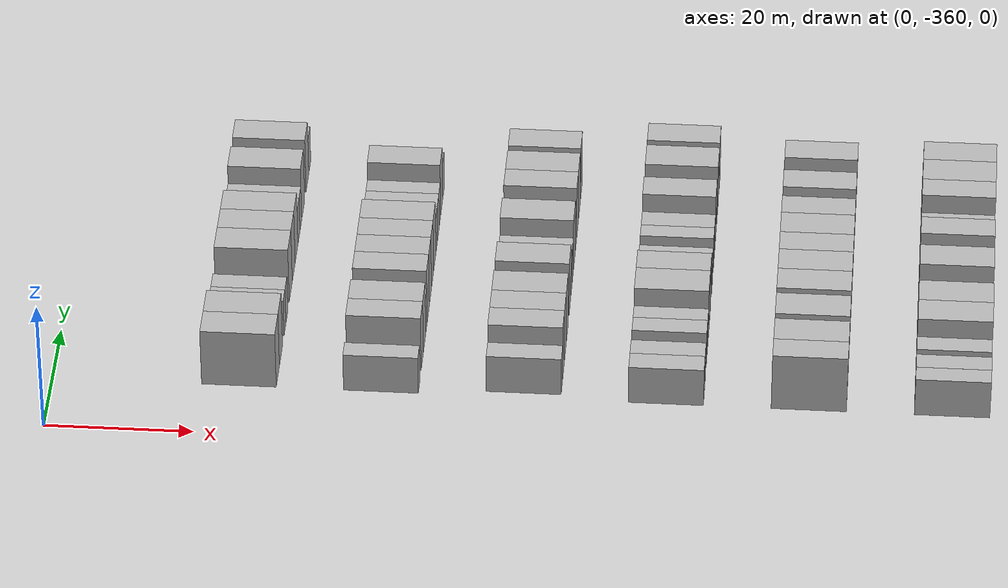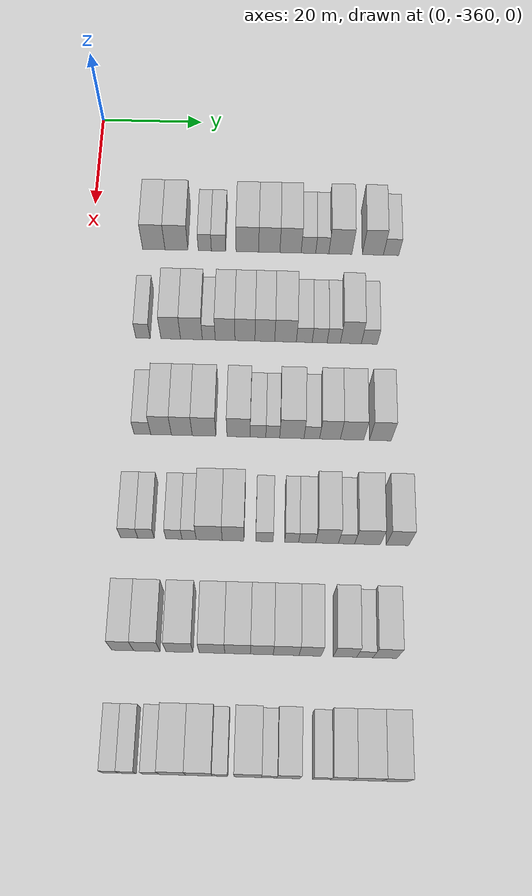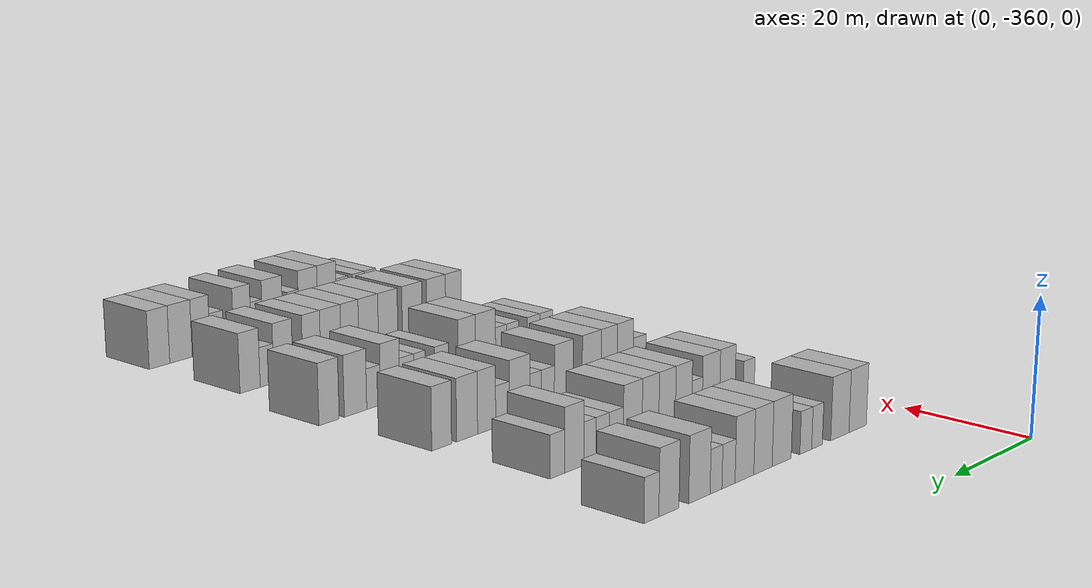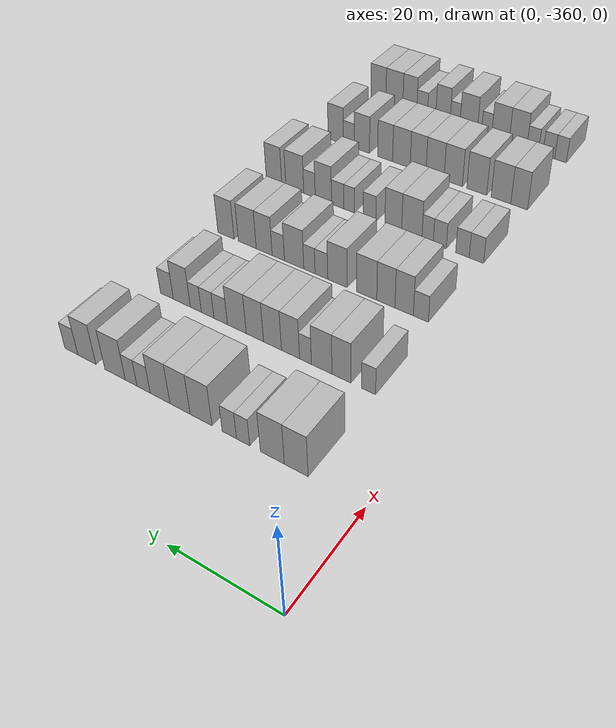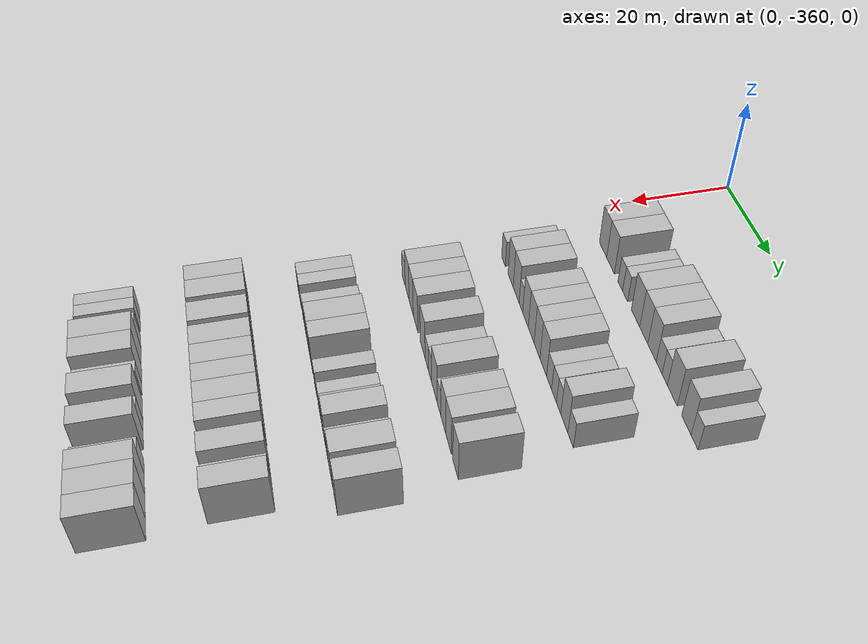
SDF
<sdf version="1.6">
 <world name="default">
  <model name="building_1">
   <static>1</static>
   <pose>25.0000 -347.8435 0 0.000000 0.000000 0.000000</pose>
   <link name="link">
    <pose>0 0 4.50 0 0 0</pose>
    <collision name="collision"><geometry><box><size>10.0000 4.3130 9.0000</size></box></geometry></collision>
    <visual name="visual">
     <cast_shadows>0</cast_shadows>
     <geometry><box><size>10.0000 4.3130 9.0000</size></box></geometry>
     <material>
      <script>
       <uri>model://HANNAS_wall/materials/scripts</uri>
       <uri>model://HANNAS_wall/materials/textures</uri>
       <name>vrc/HANNAS_wall</name>
      </script>
     </material>
    </visual>
   </link>
  </model>
  <model name="building_2">
   <static>1</static>
   <pose>25.0000 -343.4696 0 0.000000 0.000000 0.000000</pose>
   <link name="link">
    <pose>0 0 4.50 0 0 0</pose>
    <collision name="collision"><geometry><box><size>10.0000 4.4347 9.0000</size></box></geometry></collision>
    <visual name="visual">
     <cast_shadows>0</cast_shadows>
     <geometry><box><size>10.0000 4.4347 9.0000</size></box></geometry>
     <material>
      <script>
       <uri>model://HANNAS_wall/materials/scripts</uri>
       <uri>model://HANNAS_wall/materials/textures</uri>
       <name>vrc/HANNAS_wall</name>
      </script>
     </material>
    </visual>
   </link>
  </model>
  <model name="building_3">
   <static>1</static>
   <pose>25.0000 -337.9849 0 0.000000 0.000000 0.000000</pose>
   <link name="link">
    <pose>0 0 3.00 0 0 0</pose>
    <collision name="collision"><geometry><box><size>10.0000 2.5348 6.0000</size></box></geometry></collision>
    <visual name="visual">
     <cast_shadows>0</cast_shadows>
     <geometry><box><size>10.0000 2.5348 6.0000</size></box></geometry>
     <material>
      <script>
       <uri>model://HANNAS_wall/materials/scripts</uri>
       <uri>model://HANNAS_wall/materials/textures</uri>
       <name>vrc/HANNAS_wall</name>
      </script>
     </material>
    </visual>
   </link>
  </model>
  <model name="building_4">
   <static>1</static>
   <pose>25.0000 -335.3379 0 0.000000 0.000000 0.000000</pose>
   <link name="link">
    <pose>0 0 3.00 0 0 0</pose>
    <collision name="collision"><geometry><box><size>10.0000 2.7592 6.0000</size></box></geometry></collision>
    <visual name="visual">
     <cast_shadows>0</cast_shadows>
     <geometry><box><size>10.0000 2.7592 6.0000</size></box></geometry>
     <material>
      <script>
       <uri>model://HANNAS_wall/materials/scripts</uri>
       <uri>model://HANNAS_wall/materials/textures</uri>
       <name>vrc/HANNAS_wall</name>
      </script>
     </material>
    </visual>
   </link>
  </model>
  <model name="building_5">
   <static>1</static>
   <pose>25.0000 -329.7771 0 0.000000 0.000000 0.000000</pose>
   <link name="link">
    <pose>0 0 4.50 0 0 0</pose>
    <collision name="collision"><geometry><box><size>10.0000 4.3623 9.0000</size></box></geometry></collision>
    <visual name="visual">
     <cast_shadows>0</cast_shadows>
     <geometry><box><size>10.0000 4.3623 9.0000</size></box></geometry>
     <material>
      <script>
       <uri>model://HANNAS_wall/materials/scripts</uri>
       <uri>model://HANNAS_wall/materials/textures</uri>
       <name>vrc/HANNAS_wall</name>
      </script>
     </material>
    </visual>
   </link>
  </model>
  <model name="building_6">
   <static>1</static>
   <pose>25.0000 -325.5495 0 0.000000 0.000000 0.000000</pose>
   <link name="link">
    <pose>0 0 4.50 0 0 0</pose>
    <collision name="collision"><geometry><box><size>10.0000 4.0929 9.0000</size></box></geometry></collision>
    <visual name="visual">
     <cast_shadows>0</cast_shadows>
     <geometry><box><size>10.0000 4.0929 9.0000</size></box></geometry>
     <material>
      <script>
       <uri>model://HANNAS_wall/materials/scripts</uri>
       <uri>model://HANNAS_wall/materials/textures</uri>
       <name>vrc/HANNAS_wall</name>
      </script>
     </material>
    </visual>
   </link>
  </model>
  <model name="building_7">
   <static>1</static>
   <pose>25.0000 -321.4520 0 0.000000 0.000000 0.000000</pose>
   <link name="link">
    <pose>0 0 4.50 0 0 0</pose>
    <collision name="collision"><geometry><box><size>10.0000 4.1020 9.0000</size></box></geometry></collision>
    <visual name="visual">
     <cast_shadows>0</cast_shadows>
     <geometry><box><size>10.0000 4.1020 9.0000</size></box></geometry>
     <material>
      <script>
       <uri>model://HANNAS_wall/materials/scripts</uri>
       <uri>model://HANNAS_wall/materials/textures</uri>
       <name>vrc/HANNAS_wall</name>
      </script>
     </material>
    </visual>
   </link>
  </model>
  <model name="building_8">
   <static>1</static>
   <pose>25.0000 -317.9969 0 0.000000 0.000000 0.000000</pose>
   <link name="link">
    <pose>0 0 3.00 0 0 0</pose>
    <collision name="collision"><geometry><box><size>10.0000 2.8083 6.0000</size></box></geometry></collision>
    <visual name="visual">
     <cast_shadows>0</cast_shadows>
     <geometry><box><size>10.0000 2.8083 6.0000</size></box></geometry>
     <material>
      <script>
       <uri>model://HANNAS_wall/materials/scripts</uri>
       <uri>model://HANNAS_wall/materials/textures</uri>
       <name>vrc/HANNAS_wall</name>
      </script>
     </material>
    </visual>
   </link>
  </model>
  <model name="building_9">
   <static>1</static>
   <pose>25.0000 -315.3332 0 0.000000 0.000000 0.000000</pose>
   <link name="link">
    <pose>0 0 3.00 0 0 0</pose>
    <collision name="collision"><geometry><box><size>10.0000 2.5191 6.0000</size></box></geometry></collision>
    <visual name="visual">
     <cast_shadows>0</cast_shadows>
     <geometry><box><size>10.0000 2.5191 6.0000</size></box></geometry>
     <material>
      <script>
       <uri>model://HANNAS_wall/materials/scripts</uri>
       <uri>model://HANNAS_wall/materials/textures</uri>
       <name>vrc/HANNAS_wall</name>
      </script>
     </material>
    </visual>
   </link>
  </model>
  <model name="building_10">
   <static>1</static>
   <pose>25.0000 -311.8450 0 0.000000 0.000000 0.000000</pose>
   <link name="link">
    <pose>0 0 4.50 0 0 0</pose>
    <collision name="collision"><geometry><box><size>10.0000 4.4574 9.0000</size></box></geometry></collision>
    <visual name="visual">
     <cast_shadows>0</cast_shadows>
     <geometry><box><size>10.0000 4.4574 9.0000</size></box></geometry>
     <material>
      <script>
       <uri>model://HANNAS_wall/materials/scripts</uri>
       <uri>model://HANNAS_wall/materials/textures</uri>
       <name>vrc/HANNAS_wall</name>
      </script>
     </material>
    </visual>
   </link>
  </model>
  <model name="building_11">
   <static>1</static>
   <pose>25.0000 -305.5837 0 0.000000 0.000000 0.000000</pose>
   <link name="link">
    <pose>0 0 4.50 0 0 0</pose>
    <collision name="collision"><geometry><box><size>10.0000 4.0651 9.0000</size></box></geometry></collision>
    <visual name="visual">
     <cast_shadows>0</cast_shadows>
     <geometry><box><size>10.0000 4.0651 9.0000</size></box></geometry>
     <material>
      <script>
       <uri>model://HANNAS_wall/materials/scripts</uri>
       <uri>model://HANNAS_wall/materials/textures</uri>
       <name>vrc/HANNAS_wall</name>
      </script>
     </material>
    </visual>
   </link>
  </model>
  <model name="building_12">
   <static>1</static>
   <pose>25.0000 -302.0708 0 0.000000 0.000000 0.000000</pose>
   <link name="link">
    <pose>0 0 3.00 0 0 0</pose>
    <collision name="collision"><geometry><box><size>10.0000 2.9608 6.0000</size></box></geometry></collision>
    <visual name="visual">
     <cast_shadows>0</cast_shadows>
     <geometry><box><size>10.0000 2.9608 6.0000</size></box></geometry>
     <material>
      <script>
       <uri>model://HANNAS_wall/materials/scripts</uri>
       <uri>model://HANNAS_wall/materials/textures</uri>
       <name>vrc/HANNAS_wall</name>
      </script>
     </material>
    </visual>
   </link>
  </model>
  <model name="building_168">
   <static>1</static>
   <pose>44.0000 -348.6609 0 0.000000 0.000000 0.000000</pose>
   <link name="link">
    <pose>0 0 3.00 0 0 0</pose>
    <collision name="collision"><geometry><box><size>10.0000 2.6781 6.0000</size></box></geometry></collision>
    <visual name="visual">
     <cast_shadows>0</cast_shadows>
     <geometry><box><size>10.0000 2.6781 6.0000</size></box></geometry>
     <material>
      <script>
       <uri>model://HANNAS_wall/materials/scripts</uri>
       <uri>model://HANNAS_wall/materials/textures</uri>
       <name>vrc/HANNAS_wall</name>
      </script>
     </material>
    </visual>
   </link>
  </model>
  <model name="building_169">
   <static>1</static>
   <pose>44.0000 -343.4967 0 0.000000 0.000000 0.000000</pose>
   <link name="link">
    <pose>0 0 4.50 0 0 0</pose>
    <collision name="collision"><geometry><box><size>10.0000 3.6504 9.0000</size></box></geometry></collision>
    <visual name="visual">
     <cast_shadows>0</cast_shadows>
     <geometry><box><size>10.0000 3.6504 9.0000</size></box></geometry>
     <material>
      <script>
       <uri>model://HANNAS_wall/materials/scripts</uri>
       <uri>model://HANNAS_wall/materials/textures</uri>
       <name>vrc/HANNAS_wall</name>
      </script>
     </material>
    </visual>
   </link>
  </model>
  <model name="building_170">
   <static>1</static>
   <pose>44.0000 -339.6481 0 0.000000 0.000000 0.000000</pose>
   <link name="link">
    <pose>0 0 4.50 0 0 0</pose>
    <collision name="collision"><geometry><box><size>10.0000 4.0467 9.0000</size></box></geometry></collision>
    <visual name="visual">
     <cast_shadows>0</cast_shadows>
     <geometry><box><size>10.0000 4.0467 9.0000</size></box></geometry>
     <material>
      <script>
       <uri>model://HANNAS_wall/materials/scripts</uri>
       <uri>model://HANNAS_wall/materials/textures</uri>
       <name>vrc/HANNAS_wall</name>
      </script>
     </material>
    </visual>
   </link>
  </model>
  <model name="building_171">
   <static>1</static>
   <pose>44.0000 -336.4224 0 0.000000 0.000000 0.000000</pose>
   <link name="link">
    <pose>0 0 3.00 0 0 0</pose>
    <collision name="collision"><geometry><box><size>10.0000 2.4048 6.0000</size></box></geometry></collision>
    <visual name="visual">
     <cast_shadows>0</cast_shadows>
     <geometry><box><size>10.0000 2.4048 6.0000</size></box></geometry>
     <material>
      <script>
       <uri>model://HANNAS_wall/materials/scripts</uri>
       <uri>model://HANNAS_wall/materials/textures</uri>
       <name>vrc/HANNAS_wall</name>
      </script>
     </material>
    </visual>
   </link>
  </model>
  <model name="building_172">
   <static>1</static>
   <pose>44.0000 -333.3855 0 0.000000 0.000000 0.000000</pose>
   <link name="link">
    <pose>0 0 4.50 0 0 0</pose>
    <collision name="collision"><geometry><box><size>10.0000 3.6690 9.0000</size></box></geometry></collision>
    <visual name="visual">
     <cast_shadows>0</cast_shadows>
     <geometry><box><size>10.0000 3.6690 9.0000</size></box></geometry>
     <material>
      <script>
       <uri>model://HANNAS_wall/materials/scripts</uri>
       <uri>model://HANNAS_wall/materials/textures</uri>
       <name>vrc/HANNAS_wall</name>
      </script>
     </material>
    </visual>
   </link>
  </model>
  <model name="building_173">
   <static>1</static>
   <pose>44.0000 -329.6949 0 0.000000 0.000000 0.000000</pose>
   <link name="link">
    <pose>0 0 4.50 0 0 0</pose>
    <collision name="collision"><geometry><box><size>10.0000 3.7123 9.0000</size></box></geometry></collision>
    <visual name="visual">
     <cast_shadows>0</cast_shadows>
     <geometry><box><size>10.0000 3.7123 9.0000</size></box></geometry>
     <material>
      <script>
       <uri>model://HANNAS_wall/materials/scripts</uri>
       <uri>model://HANNAS_wall/materials/textures</uri>
       <name>vrc/HANNAS_wall</name>
      </script>
     </material>
    </visual>
   </link>
  </model>
  <model name="building_174">
   <static>1</static>
   <pose>44.0000 -326.0087 0 0.000000 0.000000 0.000000</pose>
   <link name="link">
    <pose>0 0 4.50 0 0 0</pose>
    <collision name="collision"><geometry><box><size>10.0000 3.6601 9.0000</size></box></geometry></collision>
    <visual name="visual">
     <cast_shadows>0</cast_shadows>
     <geometry><box><size>10.0000 3.6601 9.0000</size></box></geometry>
     <material>
      <script>
       <uri>model://HANNAS_wall/materials/scripts</uri>
       <uri>model://HANNAS_wall/materials/textures</uri>
       <name>vrc/HANNAS_wall</name>
      </script>
     </material>
    </visual>
   </link>
  </model>
  <model name="building_175">
   <static>1</static>
   <pose>44.0000 -322.1617 0 0.000000 0.000000 0.000000</pose>
   <link name="link">
    <pose>0 0 4.50 0 0 0</pose>
    <collision name="collision"><geometry><box><size>10.0000 4.0338 9.0000</size></box></geometry></collision>
    <visual name="visual">
     <cast_shadows>0</cast_shadows>
     <geometry><box><size>10.0000 4.0338 9.0000</size></box></geometry>
     <material>
      <script>
       <uri>model://HANNAS_wall/materials/scripts</uri>
       <uri>model://HANNAS_wall/materials/textures</uri>
       <name>vrc/HANNAS_wall</name>
      </script>
     </material>
    </visual>
   </link>
  </model>
  <model name="building_176">
   <static>1</static>
   <pose>44.0000 -318.6770 0 0.000000 0.000000 0.000000</pose>
   <link name="link">
    <pose>0 0 3.00 0 0 0</pose>
    <collision name="collision"><geometry><box><size>10.0000 2.9357 6.0000</size></box></geometry></collision>
    <visual name="visual">
     <cast_shadows>0</cast_shadows>
     <geometry><box><size>10.0000 2.9357 6.0000</size></box></geometry>
     <material>
      <script>
       <uri>model://HANNAS_wall/materials/scripts</uri>
       <uri>model://HANNAS_wall/materials/textures</uri>
       <name>vrc/HANNAS_wall</name>
      </script>
     </material>
    </visual>
   </link>
  </model>
  <model name="building_177">
   <static>1</static>
   <pose>44.0000 -315.8200 0 0.000000 0.000000 0.000000</pose>
   <link name="link">
    <pose>0 0 3.00 0 0 0</pose>
    <collision name="collision"><geometry><box><size>10.0000 2.7782 6.0000</size></box></geometry></collision>
    <visual name="visual">
     <cast_shadows>0</cast_shadows>
     <geometry><box><size>10.0000 2.7782 6.0000</size></box></geometry>
     <material>
      <script>
       <uri>model://HANNAS_wall/materials/scripts</uri>
       <uri>model://HANNAS_wall/materials/textures</uri>
       <name>vrc/HANNAS_wall</name>
      </script>
     </material>
    </visual>
   </link>
  </model>
  <model name="building_178">
   <static>1</static>
   <pose>44.0000 -313.1927 0 0.000000 0.000000 0.000000</pose>
   <link name="link">
    <pose>0 0 3.00 0 0 0</pose>
    <collision name="collision"><geometry><box><size>10.0000 2.4763 6.0000</size></box></geometry></collision>
    <visual name="visual">
     <cast_shadows>0</cast_shadows>
     <geometry><box><size>10.0000 2.4763 6.0000</size></box></geometry>
     <material>
      <script>
       <uri>model://HANNAS_wall/materials/scripts</uri>
       <uri>model://HANNAS_wall/materials/textures</uri>
       <name>vrc/HANNAS_wall</name>
      </script>
     </material>
    </visual>
   </link>
  </model>
  <model name="building_179">
   <static>1</static>
   <pose>44.0000 -310.0124 0 0.000000 0.000000 0.000000</pose>
   <link name="link">
    <pose>0 0 4.50 0 0 0</pose>
    <collision name="collision"><geometry><box><size>10.0000 3.8844 9.0000</size></box></geometry></collision>
    <visual name="visual">
     <cast_shadows>0</cast_shadows>
     <geometry><box><size>10.0000 3.8844 9.0000</size></box></geometry>
     <material>
      <script>
       <uri>model://HANNAS_wall/materials/scripts</uri>
       <uri>model://HANNAS_wall/materials/textures</uri>
       <name>vrc/HANNAS_wall</name>
      </script>
     </material>
    </visual>
   </link>
  </model>
  <model name="building_180">
   <static>1</static>
   <pose>44.0000 -306.5876 0 0.000000 0.000000 0.000000</pose>
   <link name="link">
    <pose>0 0 3.00 0 0 0</pose>
    <collision name="collision"><geometry><box><size>10.0000 2.9653 6.0000</size></box></geometry></collision>
    <visual name="visual">
     <cast_shadows>0</cast_shadows>
     <geometry><box><size>10.0000 2.9653 6.0000</size></box></geometry>
     <material>
      <script>
       <uri>model://HANNAS_wall/materials/scripts</uri>
       <uri>model://HANNAS_wall/materials/textures</uri>
       <name>vrc/HANNAS_wall</name>
      </script>
     </material>
    </visual>
   </link>
  </model>
  <model name="building_341">
   <static>1</static>
   <pose>63.0000 -347.5070 0 0.000000 0.000000 0.000000</pose>
   <link name="link">
    <pose>0 0 3.00 0 0 0</pose>
    <collision name="collision"><geometry><box><size>10.0000 2.9860 6.0000</size></box></geometry></collision>
    <visual name="visual">
     <cast_shadows>0</cast_shadows>
     <geometry><box><size>10.0000 2.9860 6.0000</size></box></geometry>
     <material>
      <script>
       <uri>model://HANNAS_wall/materials/scripts</uri>
       <uri>model://HANNAS_wall/materials/textures</uri>
       <name>vrc/HANNAS_wall</name>
      </script>
     </material>
    </visual>
   </link>
  </model>
  <model name="building_342">
   <static>1</static>
   <pose>63.0000 -344.1596 0 0.000000 0.000000 0.000000</pose>
   <link name="link">
    <pose>0 0 4.50 0 0 0</pose>
    <collision name="collision"><geometry><box><size>10.0000 3.7087 9.0000</size></box></geometry></collision>
    <visual name="visual">
     <cast_shadows>0</cast_shadows>
     <geometry><box><size>10.0000 3.7087 9.0000</size></box></geometry>
     <material>
      <script>
       <uri>model://HANNAS_wall/materials/scripts</uri>
       <uri>model://HANNAS_wall/materials/textures</uri>
       <name>vrc/HANNAS_wall</name>
      </script>
     </material>
    </visual>
   </link>
  </model>
  <model name="building_343">
   <static>1</static>
   <pose>63.0000 -340.4450 0 0.000000 0.000000 0.000000</pose>
   <link name="link">
    <pose>0 0 4.50 0 0 0</pose>
    <collision name="collision"><geometry><box><size>10.0000 3.7206 9.0000</size></box></geometry></collision>
    <visual name="visual">
     <cast_shadows>0</cast_shadows>
     <geometry><box><size>10.0000 3.7206 9.0000</size></box></geometry>
     <material>
      <script>
       <uri>model://HANNAS_wall/materials/scripts</uri>
       <uri>model://HANNAS_wall/materials/textures</uri>
       <name>vrc/HANNAS_wall</name>
      </script>
     </material>
    </visual>
   </link>
  </model>
  <model name="building_344">
   <static>1</static>
   <pose>63.0000 -336.4716 0 0.000000 0.000000 0.000000</pose>
   <link name="link">
    <pose>0 0 4.50 0 0 0</pose>
    <collision name="collision"><geometry><box><size>10.0000 4.2262 9.0000</size></box></geometry></collision>
    <visual name="visual">
     <cast_shadows>0</cast_shadows>
     <geometry><box><size>10.0000 4.2262 9.0000</size></box></geometry>
     <material>
      <script>
       <uri>model://HANNAS_wall/materials/scripts</uri>
       <uri>model://HANNAS_wall/materials/textures</uri>
       <name>vrc/HANNAS_wall</name>
      </script>
     </material>
    </visual>
   </link>
  </model>
  <model name="building_345">
   <static>1</static>
   <pose>63.0000 -330.2828 0 0.000000 0.000000 0.000000</pose>
   <link name="link">
    <pose>0 0 4.50 0 0 0</pose>
    <collision name="collision"><geometry><box><size>10.0000 4.1513 9.0000</size></box></geometry></collision>
    <visual name="visual">
     <cast_shadows>0</cast_shadows>
     <geometry><box><size>10.0000 4.1513 9.0000</size></box></geometry>
     <material>
      <script>
       <uri>model://HANNAS_wall/materials/scripts</uri>
       <uri>model://HANNAS_wall/materials/textures</uri>
       <name>vrc/HANNAS_wall</name>
      </script>
     </material>
    </visual>
   </link>
  </model>
  <model name="building_346">
   <static>1</static>
   <pose>63.0000 -326.8183 0 0.000000 0.000000 0.000000</pose>
   <link name="link">
    <pose>0 0 3.00 0 0 0</pose>
    <collision name="collision"><geometry><box><size>10.0000 2.7778 6.0000</size></box></geometry></collision>
    <visual name="visual">
     <cast_shadows>0</cast_shadows>
     <geometry><box><size>10.0000 2.7778 6.0000</size></box></geometry>
     <material>
      <script>
       <uri>model://HANNAS_wall/materials/scripts</uri>
       <uri>model://HANNAS_wall/materials/textures</uri>
       <name>vrc/HANNAS_wall</name>
      </script>
     </material>
    </visual>
   </link>
  </model>
  <model name="building_347">
   <static>1</static>
   <pose>63.0000 -324.1877 0 0.000000 0.000000 0.000000</pose>
   <link name="link">
    <pose>0 0 3.00 0 0 0</pose>
    <collision name="collision"><geometry><box><size>10.0000 2.4833 6.0000</size></box></geometry></collision>
    <visual name="visual">
     <cast_shadows>0</cast_shadows>
     <geometry><box><size>10.0000 2.4833 6.0000</size></box></geometry>
     <material>
      <script>
       <uri>model://HANNAS_wall/materials/scripts</uri>
       <uri>model://HANNAS_wall/materials/textures</uri>
       <name>vrc/HANNAS_wall</name>
      </script>
     </material>
    </visual>
   </link>
  </model>
  <model name="building_348">
   <static>1</static>
   <pose>63.0000 -320.7723 0 0.000000 0.000000 0.000000</pose>
   <link name="link">
    <pose>0 0 4.50 0 0 0</pose>
    <collision name="collision"><geometry><box><size>10.0000 4.3474 9.0000</size></box></geometry></collision>
    <visual name="visual">
     <cast_shadows>0</cast_shadows>
     <geometry><box><size>10.0000 4.3474 9.0000</size></box></geometry>
     <material>
      <script>
       <uri>model://HANNAS_wall/materials/scripts</uri>
       <uri>model://HANNAS_wall/materials/textures</uri>
       <name>vrc/HANNAS_wall</name>
      </script>
     </material>
    </visual>
   </link>
  </model>
  <model name="building_349">
   <static>1</static>
   <pose>63.0000 -317.2029 0 0.000000 0.000000 0.000000</pose>
   <link name="link">
    <pose>0 0 3.00 0 0 0</pose>
    <collision name="collision"><geometry><box><size>10.0000 2.7913 6.0000</size></box></geometry></collision>
    <visual name="visual">
     <cast_shadows>0</cast_shadows>
     <geometry><box><size>10.0000 2.7913 6.0000</size></box></geometry>
     <material>
      <script>
       <uri>model://HANNAS_wall/materials/scripts</uri>
       <uri>model://HANNAS_wall/materials/textures</uri>
       <name>vrc/HANNAS_wall</name>
      </script>
     </material>
    </visual>
   </link>
  </model>
  <model name="building_350">
   <static>1</static>
   <pose>63.0000 -313.9615 0 0.000000 0.000000 0.000000</pose>
   <link name="link">
    <pose>0 0 4.50 0 0 0</pose>
    <collision name="collision"><geometry><box><size>10.0000 3.6916 9.0000</size></box></geometry></collision>
    <visual name="visual">
     <cast_shadows>0</cast_shadows>
     <geometry><box><size>10.0000 3.6916 9.0000</size></box></geometry>
     <material>
      <script>
       <uri>model://HANNAS_wall/materials/scripts</uri>
       <uri>model://HANNAS_wall/materials/textures</uri>
       <name>vrc/HANNAS_wall</name>
      </script>
     </material>
    </visual>
   </link>
  </model>
  <model name="building_351">
   <static>1</static>
   <pose>63.0000 -310.0137 0 0.000000 0.000000 0.000000</pose>
   <link name="link">
    <pose>0 0 4.50 0 0 0</pose>
    <collision name="collision"><geometry><box><size>10.0000 4.2040 9.0000</size></box></geometry></collision>
    <visual name="visual">
     <cast_shadows>0</cast_shadows>
     <geometry><box><size>10.0000 4.2040 9.0000</size></box></geometry>
     <material>
      <script>
       <uri>model://HANNAS_wall/materials/scripts</uri>
       <uri>model://HANNAS_wall/materials/textures</uri>
       <name>vrc/HANNAS_wall</name>
      </script>
     </material>
    </visual>
   </link>
  </model>
  <model name="building_352">
   <static>1</static>
   <pose>63.0000 -304.9677 0 0.000000 0.000000 0.000000</pose>
   <link name="link">
    <pose>0 0 4.50 0 0 0</pose>
    <collision name="collision"><geometry><box><size>10.0000 3.8879 9.0000</size></box></geometry></collision>
    <visual name="visual">
     <cast_shadows>0</cast_shadows>
     <geometry><box><size>10.0000 3.8879 9.0000</size></box></geometry>
     <material>
      <script>
       <uri>model://HANNAS_wall/materials/scripts</uri>
       <uri>model://HANNAS_wall/materials/textures</uri>
       <name>vrc/HANNAS_wall</name>
      </script>
     </material>
    </visual>
   </link>
  </model>
  <model name="building_514">
   <static>1</static>
   <pose>82.0000 -348.5040 0 0.000000 0.000000 0.000000</pose>
   <link name="link">
    <pose>0 0 3.00 0 0 0</pose>
    <collision name="collision"><geometry><box><size>10.0000 2.9920 6.0000</size></box></geometry></collision>
    <visual name="visual">
     <cast_shadows>0</cast_shadows>
     <geometry><box><size>10.0000 2.9920 6.0000</size></box></geometry>
     <material>
      <script>
       <uri>model://HANNAS_wall/materials/scripts</uri>
       <uri>model://HANNAS_wall/materials/textures</uri>
       <name>vrc/HANNAS_wall</name>
      </script>
     </material>
    </visual>
   </link>
  </model>
  <model name="building_515">
   <static>1</static>
   <pose>82.0000 -345.5966 0 0.000000 0.000000 0.000000</pose>
   <link name="link">
    <pose>0 0 3.00 0 0 0</pose>
    <collision name="collision"><geometry><box><size>10.0000 2.8228 6.0000</size></box></geometry></collision>
    <visual name="visual">
     <cast_shadows>0</cast_shadows>
     <geometry><box><size>10.0000 2.8228 6.0000</size></box></geometry>
     <material>
      <script>
       <uri>model://HANNAS_wall/materials/scripts</uri>
       <uri>model://HANNAS_wall/materials/textures</uri>
       <name>vrc/HANNAS_wall</name>
      </script>
     </material>
    </visual>
   </link>
  </model>
  <model name="building_516">
   <static>1</static>
   <pose>82.0000 -340.7962 0 0.000000 0.000000 0.000000</pose>
   <link name="link">
    <pose>0 0 3.00 0 0 0</pose>
    <collision name="collision"><geometry><box><size>10.0000 2.7781 6.0000</size></box></geometry></collision>
    <visual name="visual">
     <cast_shadows>0</cast_shadows>
     <geometry><box><size>10.0000 2.7781 6.0000</size></box></geometry>
     <material>
      <script>
       <uri>model://HANNAS_wall/materials/scripts</uri>
       <uri>model://HANNAS_wall/materials/textures</uri>
       <name>vrc/HANNAS_wall</name>
      </script>
     </material>
    </visual>
   </link>
  </model>
  <model name="building_517">
   <static>1</static>
   <pose>82.0000 -338.1865 0 0.000000 0.000000 0.000000</pose>
   <link name="link">
    <pose>0 0 3.00 0 0 0</pose>
    <collision name="collision"><geometry><box><size>10.0000 2.4413 6.0000</size></box></geometry></collision>
    <visual name="visual">
     <cast_shadows>0</cast_shadows>
     <geometry><box><size>10.0000 2.4413 6.0000</size></box></geometry>
     <material>
      <script>
       <uri>model://HANNAS_wall/materials/scripts</uri>
       <uri>model://HANNAS_wall/materials/textures</uri>
       <name>vrc/HANNAS_wall</name>
      </script>
     </material>
    </visual>
   </link>
  </model>
  <model name="building_518">
   <static>1</static>
   <pose>82.0000 -334.7328 0 0.000000 0.000000 0.000000</pose>
   <link name="link">
    <pose>0 0 4.50 0 0 0</pose>
    <collision name="collision"><geometry><box><size>10.0000 4.4661 9.0000</size></box></geometry></collision>
    <visual name="visual">
     <cast_shadows>0</cast_shadows>
     <geometry><box><size>10.0000 4.4661 9.0000</size></box></geometry>
     <material>
      <script>
       <uri>model://HANNAS_wall/materials/scripts</uri>
       <uri>model://HANNAS_wall/materials/textures</uri>
       <name>vrc/HANNAS_wall</name>
      </script>
     </material>
    </visual>
   </link>
  </model>
  <model name="building_519">
   <static>1</static>
   <pose>82.0000 -330.6326 0 0.000000 0.000000 0.000000</pose>
   <link name="link">
    <pose>0 0 4.50 0 0 0</pose>
    <collision name="collision"><geometry><box><size>10.0000 3.7342 9.0000</size></box></geometry></collision>
    <visual name="visual">
     <cast_shadows>0</cast_shadows>
     <geometry><box><size>10.0000 3.7342 9.0000</size></box></geometry>
     <material>
      <script>
       <uri>model://HANNAS_wall/materials/scripts</uri>
       <uri>model://HANNAS_wall/materials/textures</uri>
       <name>vrc/HANNAS_wall</name>
      </script>
     </material>
    </visual>
   </link>
  </model>
  <model name="building_520">
   <static>1</static>
   <pose>82.0000 -325.2828 0 0.000000 0.000000 0.000000</pose>
   <link name="link">
    <pose>0 0 3.00 0 0 0</pose>
    <collision name="collision"><geometry><box><size>10.0000 2.9655 6.0000</size></box></geometry></collision>
    <visual name="visual">
     <cast_shadows>0</cast_shadows>
     <geometry><box><size>10.0000 2.9655 6.0000</size></box></geometry>
     <material>
      <script>
       <uri>model://HANNAS_wall/materials/scripts</uri>
       <uri>model://HANNAS_wall/materials/textures</uri>
       <name>vrc/HANNAS_wall</name>
      </script>
     </material>
    </visual>
   </link>
  </model>
  <model name="building_521">
   <static>1</static>
   <pose>82.0000 -320.5939 0 0.000000 0.000000 0.000000</pose>
   <link name="link">
    <pose>0 0 3.00 0 0 0</pose>
    <collision name="collision"><geometry><box><size>10.0000 2.4123 6.0000</size></box></geometry></collision>
    <visual name="visual">
     <cast_shadows>0</cast_shadows>
     <geometry><box><size>10.0000 2.4123 6.0000</size></box></geometry>
     <material>
      <script>
       <uri>model://HANNAS_wall/materials/scripts</uri>
       <uri>model://HANNAS_wall/materials/textures</uri>
       <name>vrc/HANNAS_wall</name>
      </script>
     </material>
    </visual>
   </link>
  </model>
  <model name="building_522">
   <static>1</static>
   <pose>82.0000 -317.9277 0 0.000000 0.000000 0.000000</pose>
   <link name="link">
    <pose>0 0 3.00 0 0 0</pose>
    <collision name="collision"><geometry><box><size>10.0000 2.9200 6.0000</size></box></geometry></collision>
    <visual name="visual">
     <cast_shadows>0</cast_shadows>
     <geometry><box><size>10.0000 2.9200 6.0000</size></box></geometry>
     <material>
      <script>
       <uri>model://HANNAS_wall/materials/scripts</uri>
       <uri>model://HANNAS_wall/materials/textures</uri>
       <name>vrc/HANNAS_wall</name>
      </script>
     </material>
    </visual>
   </link>
  </model>
  <model name="building_523">
   <static>1</static>
   <pose>82.0000 -314.5186 0 0.000000 0.000000 0.000000</pose>
   <link name="link">
    <pose>0 0 4.50 0 0 0</pose>
    <collision name="collision"><geometry><box><size>10.0000 3.8981 9.0000</size></box></geometry></collision>
    <visual name="visual">
     <cast_shadows>0</cast_shadows>
     <geometry><box><size>10.0000 3.8981 9.0000</size></box></geometry>
     <material>
      <script>
       <uri>model://HANNAS_wall/materials/scripts</uri>
       <uri>model://HANNAS_wall/materials/textures</uri>
       <name>vrc/HANNAS_wall</name>
      </script>
     </material>
    </visual>
   </link>
  </model>
  <model name="building_524">
   <static>1</static>
   <pose>82.0000 -311.1834 0 0.000000 0.000000 0.000000</pose>
   <link name="link">
    <pose>0 0 3.00 0 0 0</pose>
    <collision name="collision"><geometry><box><size>10.0000 2.7723 6.0000</size></box></geometry></collision>
    <visual name="visual">
     <cast_shadows>0</cast_shadows>
     <geometry><box><size>10.0000 2.7723 6.0000</size></box></geometry>
     <material>
      <script>
       <uri>model://HANNAS_wall/materials/scripts</uri>
       <uri>model://HANNAS_wall/materials/textures</uri>
       <name>vrc/HANNAS_wall</name>
      </script>
     </material>
    </visual>
   </link>
  </model>
  <model name="building_525">
   <static>1</static>
   <pose>82.0000 -307.5912 0 0.000000 0.000000 0.000000</pose>
   <link name="link">
    <pose>0 0 4.50 0 0 0</pose>
    <collision name="collision"><geometry><box><size>10.0000 4.4123 9.0000</size></box></geometry></collision>
    <visual name="visual">
     <cast_shadows>0</cast_shadows>
     <geometry><box><size>10.0000 4.4123 9.0000</size></box></geometry>
     <material>
      <script>
       <uri>model://HANNAS_wall/materials/scripts</uri>
       <uri>model://HANNAS_wall/materials/textures</uri>
       <name>vrc/HANNAS_wall</name>
      </script>
     </material>
    </visual>
   </link>
  </model>
  <model name="building_526">
   <static>1</static>
   <pose>82.0000 -302.4436 0 0.000000 0.000000 0.000000</pose>
   <link name="link">
    <pose>0 0 4.50 0 0 0</pose>
    <collision name="collision"><geometry><box><size>10.0000 3.8829 9.0000</size></box></geometry></collision>
    <visual name="visual">
     <cast_shadows>0</cast_shadows>
     <geometry><box><size>10.0000 3.8829 9.0000</size></box></geometry>
     <material>
      <script>
       <uri>model://HANNAS_wall/materials/scripts</uri>
       <uri>model://HANNAS_wall/materials/textures</uri>
       <name>vrc/HANNAS_wall</name>
      </script>
     </material>
    </visual>
   </link>
  </model>
  <model name="building_697">
   <static>1</static>
   <pose>101.0000 -348.1866 0 0.000000 0.000000 0.000000</pose>
   <link name="link">
    <pose>0 0 4.50 0 0 0</pose>
    <collision name="collision"><geometry><box><size>10.0000 3.6269 9.0000</size></box></geometry></collision>
    <visual name="visual">
     <cast_shadows>0</cast_shadows>
     <geometry><box><size>10.0000 3.6269 9.0000</size></box></geometry>
     <material>
      <script>
       <uri>model://HANNAS_wall/materials/scripts</uri>
       <uri>model://HANNAS_wall/materials/textures</uri>
       <name>vrc/HANNAS_wall</name>
      </script>
     </material>
    </visual>
   </link>
  </model>
  <model name="building_698">
   <static>1</static>
   <pose>101.0000 -344.2103 0 0.000000 0.000000 0.000000</pose>
   <link name="link">
    <pose>0 0 4.50 0 0 0</pose>
    <collision name="collision"><geometry><box><size>10.0000 4.3256 9.0000</size></box></geometry></collision>
    <visual name="visual">
     <cast_shadows>0</cast_shadows>
     <geometry><box><size>10.0000 4.3256 9.0000</size></box></geometry>
     <material>
      <script>
       <uri>model://HANNAS_wall/materials/scripts</uri>
       <uri>model://HANNAS_wall/materials/textures</uri>
       <name>vrc/HANNAS_wall</name>
      </script>
     </material>
    </visual>
   </link>
  </model>
  <model name="building_699">
   <static>1</static>
   <pose>101.0000 -338.8178 0 0.000000 0.000000 0.000000</pose>
   <link name="link">
    <pose>0 0 4.50 0 0 0</pose>
    <collision name="collision"><geometry><box><size>10.0000 4.4594 9.0000</size></box></geometry></collision>
    <visual name="visual">
     <cast_shadows>0</cast_shadows>
     <geometry><box><size>10.0000 4.4594 9.0000</size></box></geometry>
     <material>
      <script>
       <uri>model://HANNAS_wall/materials/scripts</uri>
       <uri>model://HANNAS_wall/materials/textures</uri>
       <name>vrc/HANNAS_wall</name>
      </script>
     </material>
    </visual>
   </link>
  </model>
  <model name="building_700">
   <static>1</static>
   <pose>101.0000 -333.4713 0 0.000000 0.000000 0.000000</pose>
   <link name="link">
    <pose>0 0 4.50 0 0 0</pose>
    <collision name="collision"><geometry><box><size>10.0000 4.2337 9.0000</size></box></geometry></collision>
    <visual name="visual">
     <cast_shadows>0</cast_shadows>
     <geometry><box><size>10.0000 4.2337 9.0000</size></box></geometry>
     <material>
      <script>
       <uri>model://HANNAS_wall/materials/scripts</uri>
       <uri>model://HANNAS_wall/materials/textures</uri>
       <name>vrc/HANNAS_wall</name>
      </script>
     </material>
    </visual>
   </link>
  </model>
  <model name="building_701">
   <static>1</static>
   <pose>101.0000 -329.2555 0 0.000000 0.000000 0.000000</pose>
   <link name="link">
    <pose>0 0 4.50 0 0 0</pose>
    <collision name="collision"><geometry><box><size>10.0000 4.1978 9.0000</size></box></geometry></collision>
    <visual name="visual">
     <cast_shadows>0</cast_shadows>
     <geometry><box><size>10.0000 4.1978 9.0000</size></box></geometry>
     <material>
      <script>
       <uri>model://HANNAS_wall/materials/scripts</uri>
       <uri>model://HANNAS_wall/materials/textures</uri>
       <name>vrc/HANNAS_wall</name>
      </script>
     </material>
    </visual>
   </link>
  </model>
  <model name="building_702">
   <static>1</static>
   <pose>101.0000 -325.2823 0 0.000000 0.000000 0.000000</pose>
   <link name="link">
    <pose>0 0 4.50 0 0 0</pose>
    <collision name="collision"><geometry><box><size>10.0000 3.7484 9.0000</size></box></geometry></collision>
    <visual name="visual">
     <cast_shadows>0</cast_shadows>
     <geometry><box><size>10.0000 3.7484 9.0000</size></box></geometry>
     <material>
      <script>
       <uri>model://HANNAS_wall/materials/scripts</uri>
       <uri>model://HANNAS_wall/materials/textures</uri>
       <name>vrc/HANNAS_wall</name>
      </script>
     </material>
    </visual>
   </link>
  </model>
  <model name="building_703">
   <static>1</static>
   <pose>101.0000 -321.2817 0 0.000000 0.000000 0.000000</pose>
   <link name="link">
    <pose>0 0 4.50 0 0 0</pose>
    <collision name="collision"><geometry><box><size>10.0000 4.2528 9.0000</size></box></geometry></collision>
    <visual name="visual">
     <cast_shadows>0</cast_shadows>
     <geometry><box><size>10.0000 4.2528 9.0000</size></box></geometry>
     <material>
      <script>
       <uri>model://HANNAS_wall/materials/scripts</uri>
       <uri>model://HANNAS_wall/materials/textures</uri>
       <name>vrc/HANNAS_wall</name>
      </script>
     </material>
    </visual>
   </link>
  </model>
  <model name="building_704">
   <static>1</static>
   <pose>101.0000 -317.3300 0 0.000000 0.000000 0.000000</pose>
   <link name="link">
    <pose>0 0 4.50 0 0 0</pose>
    <collision name="collision"><geometry><box><size>10.0000 3.6507 9.0000</size></box></geometry></collision>
    <visual name="visual">
     <cast_shadows>0</cast_shadows>
     <geometry><box><size>10.0000 3.6507 9.0000</size></box></geometry>
     <material>
      <script>
       <uri>model://HANNAS_wall/materials/scripts</uri>
       <uri>model://HANNAS_wall/materials/textures</uri>
       <name>vrc/HANNAS_wall</name>
      </script>
     </material>
    </visual>
   </link>
  </model>
  <model name="building_705">
   <static>1</static>
   <pose>101.0000 -311.5883 0 0.000000 0.000000 0.000000</pose>
   <link name="link">
    <pose>0 0 4.50 0 0 0</pose>
    <collision name="collision"><geometry><box><size>10.0000 3.8327 9.0000</size></box></geometry></collision>
    <visual name="visual">
     <cast_shadows>0</cast_shadows>
     <geometry><box><size>10.0000 3.8327 9.0000</size></box></geometry>
     <material>
      <script>
       <uri>model://HANNAS_wall/materials/scripts</uri>
       <uri>model://HANNAS_wall/materials/textures</uri>
       <name>vrc/HANNAS_wall</name>
      </script>
     </material>
    </visual>
   </link>
  </model>
  <model name="building_706">
   <static>1</static>
   <pose>101.0000 -308.3203 0 0.000000 0.000000 0.000000</pose>
   <link name="link">
    <pose>0 0 3.00 0 0 0</pose>
    <collision name="collision"><geometry><box><size>10.0000 2.7032 6.0000</size></box></geometry></collision>
    <visual name="visual">
     <cast_shadows>0</cast_shadows>
     <geometry><box><size>10.0000 2.7032 6.0000</size></box></geometry>
     <material>
      <script>
       <uri>model://HANNAS_wall/materials/scripts</uri>
       <uri>model://HANNAS_wall/materials/textures</uri>
       <name>vrc/HANNAS_wall</name>
      </script>
     </material>
    </visual>
   </link>
  </model>
  <model name="building_707">
   <static>1</static>
   <pose>101.0000 -305.0097 0 0.000000 0.000000 0.000000</pose>
   <link name="link">
    <pose>0 0 4.50 0 0 0</pose>
    <collision name="collision"><geometry><box><size>10.0000 3.9181 9.0000</size></box></geometry></collision>
    <visual name="visual">
     <cast_shadows>0</cast_shadows>
     <geometry><box><size>10.0000 3.9181 9.0000</size></box></geometry>
     <material>
      <script>
       <uri>model://HANNAS_wall/materials/scripts</uri>
       <uri>model://HANNAS_wall/materials/textures</uri>
       <name>vrc/HANNAS_wall</name>
      </script>
     </material>
    </visual>
   </link>
  </model>
  <model name="building_868">
   <static>1</static>
   <pose>120.0000 -348.6816 0 0.000000 0.000000 0.000000</pose>
   <link name="link">
    <pose>0 0 3.00 0 0 0</pose>
    <collision name="collision"><geometry><box><size>10.0000 2.6368 6.0000</size></box></geometry></collision>
    <visual name="visual">
     <cast_shadows>0</cast_shadows>
     <geometry><box><size>10.0000 2.6368 6.0000</size></box></geometry>
     <material>
      <script>
       <uri>model://HANNAS_wall/materials/scripts</uri>
       <uri>model://HANNAS_wall/materials/textures</uri>
       <name>vrc/HANNAS_wall</name>
      </script>
     </material>
    </visual>
   </link>
  </model>
  <model name="building_869">
   <static>1</static>
   <pose>120.0000 -346.0055 0 0.000000 0.000000 0.000000</pose>
   <link name="link">
    <pose>0 0 3.00 0 0 0</pose>
    <collision name="collision"><geometry><box><size>10.0000 2.7153 6.0000</size></box></geometry></collision>
    <visual name="visual">
     <cast_shadows>0</cast_shadows>
     <geometry><box><size>10.0000 2.7153 6.0000</size></box></geometry>
     <material>
      <script>
       <uri>model://HANNAS_wall/materials/scripts</uri>
       <uri>model://HANNAS_wall/materials/textures</uri>
       <name>vrc/HANNAS_wall</name>
      </script>
     </material>
    </visual>
   </link>
  </model>
  <model name="building_870">
   <static>1</static>
   <pose>120.0000 -342.2993 0 0.000000 0.000000 0.000000</pose>
   <link name="link">
    <pose>0 0 3.00 0 0 0</pose>
    <collision name="collision"><geometry><box><size>10.0000 2.6971 6.0000</size></box></geometry></collision>
    <visual name="visual">
     <cast_shadows>0</cast_shadows>
     <geometry><box><size>10.0000 2.6971 6.0000</size></box></geometry>
     <material>
      <script>
       <uri>model://HANNAS_wall/materials/scripts</uri>
       <uri>model://HANNAS_wall/materials/textures</uri>
       <name>vrc/HANNAS_wall</name>
      </script>
     </material>
    </visual>
   </link>
  </model>
  <model name="building_871">
   <static>1</static>
   <pose>120.0000 -338.8711 0 0.000000 0.000000 0.000000</pose>
   <link name="link">
    <pose>0 0 4.50 0 0 0</pose>
    <collision name="collision"><geometry><box><size>10.0000 4.1593 9.0000</size></box></geometry></collision>
    <visual name="visual">
     <cast_shadows>0</cast_shadows>
     <geometry><box><size>10.0000 4.1593 9.0000</size></box></geometry>
     <material>
      <script>
       <uri>model://HANNAS_wall/materials/scripts</uri>
       <uri>model://HANNAS_wall/materials/textures</uri>
       <name>vrc/HANNAS_wall</name>
      </script>
     </material>
    </visual>
   </link>
  </model>
  <model name="building_872">
   <static>1</static>
   <pose>120.0000 -334.7080 0 0.000000 0.000000 0.000000</pose>
   <link name="link">
    <pose>0 0 4.50 0 0 0</pose>
    <collision name="collision"><geometry><box><size>10.0000 4.1669 9.0000</size></box></geometry></collision>
    <visual name="visual">
     <cast_shadows>0</cast_shadows>
     <geometry><box><size>10.0000 4.1669 9.0000</size></box></geometry>
     <material>
      <script>
       <uri>model://HANNAS_wall/materials/scripts</uri>
       <uri>model://HANNAS_wall/materials/textures</uri>
       <name>vrc/HANNAS_wall</name>
      </script>
     </material>
    </visual>
   </link>
  </model>
  <model name="building_873">
   <static>1</static>
   <pose>120.0000 -331.4092 0 0.000000 0.000000 0.000000</pose>
   <link name="link">
    <pose>0 0 3.00 0 0 0</pose>
    <collision name="collision"><geometry><box><size>10.0000 2.4308 6.0000</size></box></geometry></collision>
    <visual name="visual">
     <cast_shadows>0</cast_shadows>
     <geometry><box><size>10.0000 2.4308 6.0000</size></box></geometry>
     <material>
      <script>
       <uri>model://HANNAS_wall/materials/scripts</uri>
       <uri>model://HANNAS_wall/materials/textures</uri>
       <name>vrc/HANNAS_wall</name>
      </script>
     </material>
    </visual>
   </link>
  </model>
  <model name="building_874">
   <static>1</static>
   <pose>120.0000 -327.0607 0 0.000000 0.000000 0.000000</pose>
   <link name="link">
    <pose>0 0 4.50 0 0 0</pose>
    <collision name="collision"><geometry><box><size>10.0000 4.2662 9.0000</size></box></geometry></collision>
    <visual name="visual">
     <cast_shadows>0</cast_shadows>
     <geometry><box><size>10.0000 4.2662 9.0000</size></box></geometry>
     <material>
      <script>
       <uri>model://HANNAS_wall/materials/scripts</uri>
       <uri>model://HANNAS_wall/materials/textures</uri>
       <name>vrc/HANNAS_wall</name>
      </script>
     </material>
    </visual>
   </link>
  </model>
  <model name="building_875">
   <static>1</static>
   <pose>120.0000 -323.7111 0 0.000000 0.000000 0.000000</pose>
   <link name="link">
    <pose>0 0 3.00 0 0 0</pose>
    <collision name="collision"><geometry><box><size>10.0000 2.4331 6.0000</size></box></geometry></collision>
    <visual name="visual">
     <cast_shadows>0</cast_shadows>
     <geometry><box><size>10.0000 2.4331 6.0000</size></box></geometry>
     <material>
      <script>
       <uri>model://HANNAS_wall/materials/scripts</uri>
       <uri>model://HANNAS_wall/materials/textures</uri>
       <name>vrc/HANNAS_wall</name>
      </script>
     </material>
    </visual>
   </link>
  </model>
  <model name="building_876">
   <static>1</static>
   <pose>120.0000 -320.6843 0 0.000000 0.000000 0.000000</pose>
   <link name="link">
    <pose>0 0 4.50 0 0 0</pose>
    <collision name="collision"><geometry><box><size>10.0000 3.6205 9.0000</size></box></geometry></collision>
    <visual name="visual">
     <cast_shadows>0</cast_shadows>
     <geometry><box><size>10.0000 3.6205 9.0000</size></box></geometry>
     <material>
      <script>
       <uri>model://HANNAS_wall/materials/scripts</uri>
       <uri>model://HANNAS_wall/materials/textures</uri>
       <name>vrc/HANNAS_wall</name>
      </script>
     </material>
    </visual>
   </link>
  </model>
  <model name="building_877">
   <static>1</static>
   <pose>120.0000 -315.4848 0 0.000000 0.000000 0.000000</pose>
   <link name="link">
    <pose>0 0 3.00 0 0 0</pose>
    <collision name="collision"><geometry><box><size>10.0000 2.7784 6.0000</size></box></geometry></collision>
    <visual name="visual">
     <cast_shadows>0</cast_shadows>
     <geometry><box><size>10.0000 2.7784 6.0000</size></box></geometry>
     <material>
      <script>
       <uri>model://HANNAS_wall/materials/scripts</uri>
       <uri>model://HANNAS_wall/materials/textures</uri>
       <name>vrc/HANNAS_wall</name>
      </script>
     </material>
    </visual>
   </link>
  </model>
  <model name="building_878">
   <static>1</static>
   <pose>120.0000 -312.2947 0 0.000000 0.000000 0.000000</pose>
   <link name="link">
    <pose>0 0 4.50 0 0 0</pose>
    <collision name="collision"><geometry><box><size>10.0000 3.6020 9.0000</size></box></geometry></collision>
    <visual name="visual">
     <cast_shadows>0</cast_shadows>
     <geometry><box><size>10.0000 3.6020 9.0000</size></box></geometry>
     <material>
      <script>
       <uri>model://HANNAS_wall/materials/scripts</uri>
       <uri>model://HANNAS_wall/materials/textures</uri>
       <name>vrc/HANNAS_wall</name>
      </script>
     </material>
    </visual>
   </link>
  </model>
  <model name="building_879">
   <static>1</static>
   <pose>120.0000 -308.2859 0 0.000000 0.000000 0.000000</pose>
   <link name="link">
    <pose>0 0 4.50 0 0 0</pose>
    <collision name="collision"><geometry><box><size>10.0000 4.4155 9.0000</size></box></geometry></collision>
    <visual name="visual">
     <cast_shadows>0</cast_shadows>
     <geometry><box><size>10.0000 4.4155 9.0000</size></box></geometry>
     <material>
      <script>
       <uri>model://HANNAS_wall/materials/scripts</uri>
       <uri>model://HANNAS_wall/materials/textures</uri>
       <name>vrc/HANNAS_wall</name>
      </script>
     </material>
    </visual>
   </link>
  </model>
  <model name="building_880">
   <static>1</static>
   <pose>120.0000 -304.0873 0 0.000000 0.000000 0.000000</pose>
   <link name="link">
    <pose>0 0 4.50 0 0 0</pose>
    <collision name="collision"><geometry><box><size>10.0000 3.9818 9.0000</size></box></geometry></collision>
    <visual name="visual">
     <cast_shadows>0</cast_shadows>
     <geometry><box><size>10.0000 3.9818 9.0000</size></box></geometry>
     <material>
      <script>
       <uri>model://HANNAS_wall/materials/scripts</uri>
       <uri>model://HANNAS_wall/materials/textures</uri>
       <name>vrc/HANNAS_wall</name>
      </script>
     </material>
    </visual>
   </link>
  </model>
 </world>
</sdf>
